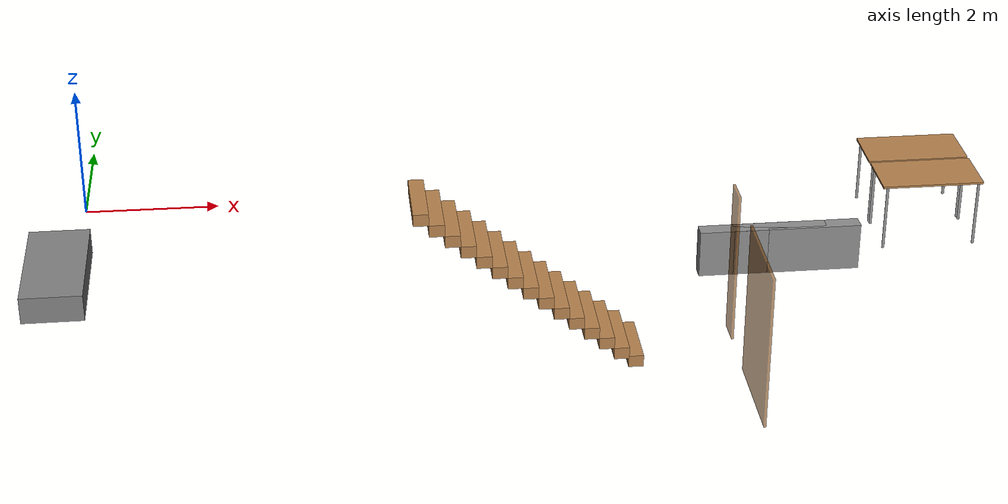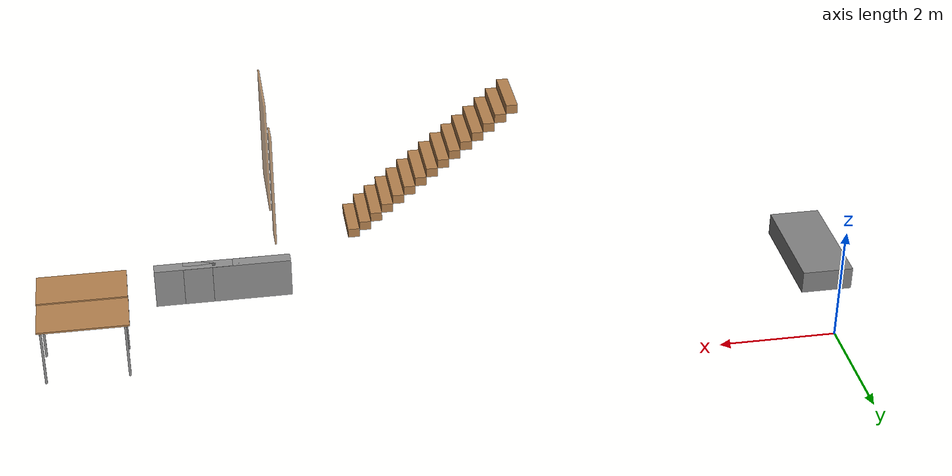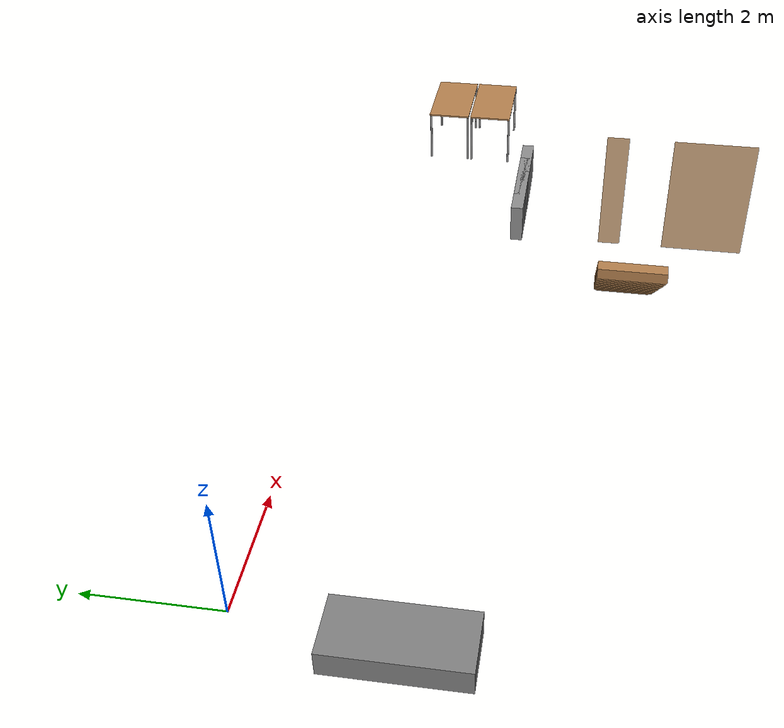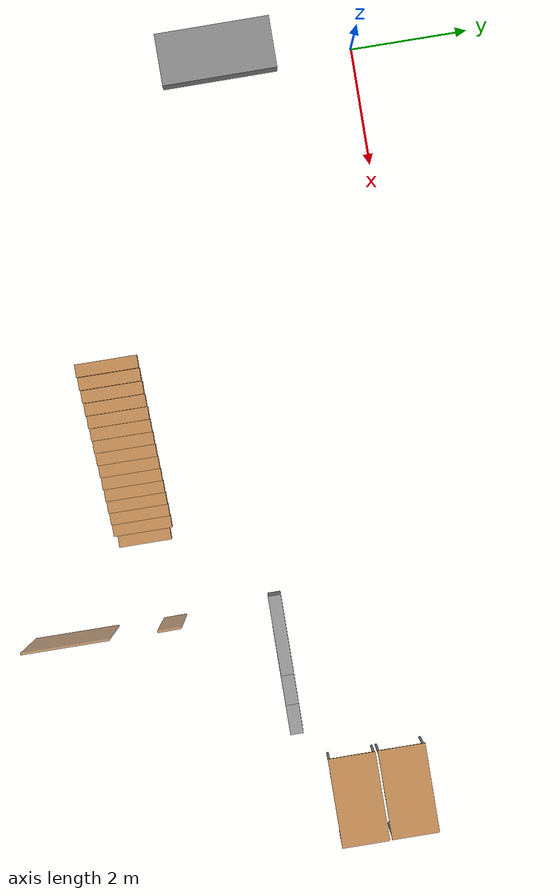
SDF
<sdf version="1.6">
 <world name="scenario_3">
  <physics name="1ms" type="ignored">
   <max_step_size>0.001</max_step_size>
   <real_time_factor>1.0</real_time_factor>
  </physics>
  <plugin filename="ignition-gazebo-contact-system" name="gz::sim::systems::Contact"/>
  <plugin filename="ignition-gazebo-imu-system" name="gz::sim::systems::Imu"/>
  <plugin filename="ignition-gazebo-physics-system" name="gz::sim::systems::Physics"/>
  <plugin filename="ignition-gazebo-scene-broadcaster-system" name="gz::sim::systems::SceneBroadcaster"/>
  <plugin filename="ignition-gazebo-sensors-system" name="gz::sim::systems::Sensors"/>
  <plugin filename="ignition-gazebo-user-commands-system" name="gz::sim::systems::UserCommands"/>
  <spherical_coordinates>
   <surface_model>EARTH_WGS84</surface_model>
   <world_frame_orientation>ENU</world_frame_orientation>
   <latitude_deg>50.088280</latitude_deg>
   <longitude_deg>19.938931</longitude_deg>
   <elevation>0</elevation>
   <heading_deg>0</heading_deg>
  </spherical_coordinates>
  <scene>
   <ambient>0.8 0.8 0.8 1</ambient>
   <background>0 0 0 1</background>
   <grid>0</grid>
   <shadows>1</shadows>
  </scene>
  <light name="sun" type="directional">
   <pose>0 0 10 0 -0 0</pose>
   <diffuse>0.8 0.8 0.8 1</diffuse>
   <specular>0.2 0.2 0.2 1</specular>
   <attenuation>
    <range>1000</range>
    <constant>0.9</constant>
    <linear>0.01</linear>
    <quadratic>0.001</quadratic>
   </attenuation>
   <direction>-0.5 0.1 -0.9</direction>
   <spot><inner_angle>0</inner_angle><outer_angle>0</outer_angle><falloff>0</falloff></spot>
  </light>
  <model name="OpenRobotics/Table">
   <static>1</static>
   <link name="link">
    <collision name="surface">
     <pose>0 0 1 0 -0 0</pose>
     <geometry><box><size>1.5 0.8 0.03</size></box></geometry>
     <surface><friction><ode><mu>0.6</mu><mu2>0.6</mu2></ode></friction></surface>
    </collision>
    <visual name="visual1">
     <pose>0 0 1 0 -0 0</pose>
     <geometry><box><size>1.5 0.8 0.03</size></box></geometry>
     <material>
      <diffuse>1 1 1 1</diffuse>
      <script><uri>file://media/materials/scripts/gazebo.material</uri><name>Gazebo/Wood</name></script>
      <pbr>
       <metal>
        <albedo_map>https://fuel.gazebosim.org/1.0/openrobotics/models/table/3/files/Table_Diffuse.jpg</albedo_map>
       </metal>
      </pbr>
     </material>
    </visual>
    <collision name="front_left_leg">
     <pose>0.68 0.38 0.5 0 -0 0</pose>
     <geometry><cylinder><radius>0.02</radius><length>1</length></cylinder></geometry>
    </collision>
    <visual name="front_left_leg">
     <pose>0.68 0.38 0.5 0 -0 0</pose>
     <geometry><cylinder><radius>0.02</radius><length>1</length></cylinder></geometry>
     <material>
      <diffuse>0.5 0.5 0.5 1</diffuse>
      <script><uri>file://media/materials/scripts/gazebo.material</uri><name>Gazebo/Grey</name></script>
     </material>
    </visual>
    <collision name="front_right_leg">
     <pose>0.68 -0.38 0.5 0 -0 0</pose>
     <geometry><cylinder><radius>0.02</radius><length>1</length></cylinder></geometry>
    </collision>
    <visual name="front_right_leg">
     <pose>0.68 -0.38 0.5 0 -0 0</pose>
     <geometry><cylinder><radius>0.02</radius><length>1</length></cylinder></geometry>
     <material>
      <diffuse>0.5 0.5 0.5 1</diffuse>
      <script><uri>file://media/materials/scripts/gazebo.material</uri><name>Gazebo/Grey</name></script>
     </material>
    </visual>
    <collision name="back_right_leg">
     <pose>-0.68 -0.38 0.5 0 -0 0</pose>
     <geometry><cylinder><radius>0.02</radius><length>1</length></cylinder></geometry>
    </collision>
    <visual name="back_right_leg">
     <pose>-0.68 -0.38 0.5 0 -0 0</pose>
     <geometry><cylinder><radius>0.02</radius><length>1</length></cylinder></geometry>
     <material>
      <diffuse>0.5 0.5 0.5 1</diffuse>
      <script><uri>file://media/materials/scripts/gazebo.material</uri><name>Gazebo/Grey</name></script>
     </material>
    </visual>
    <collision name="back_left_leg">
     <pose>-0.68 0.38 0.5 0 -0 0</pose>
     <geometry><cylinder><radius>0.02</radius><length>1</length></cylinder></geometry>
    </collision>
    <visual name="back_left_leg">
     <pose>-0.68 0.38 0.5 0 -0 0</pose>
     <geometry><cylinder><radius>0.02</radius><length>1</length></cylinder></geometry>
     <material>
      <diffuse>0.5 0.5 0.5 1</diffuse>
      <script><uri>file://media/materials/scripts/gazebo.material</uri><name>Gazebo/Grey</name></script>
     </material>
    </visual>
   </link>
   <pose>12.483 -1.10033 0 0 0 -3.14</pose>
  </model>
  <model name="OpenRobotics/Table_2">
   <static>1</static>
   <link name="link">
    <collision name="surface">
     <pose>0 0 1 0 -0 0</pose>
     <geometry><box><size>1.5 0.8 0.03</size></box></geometry>
     <surface><friction><ode><mu>0.6</mu><mu2>0.6</mu2></ode></friction></surface>
    </collision>
    <visual name="visual1">
     <pose>0 0 1 0 -0 0</pose>
     <geometry><box><size>1.5 0.8 0.03</size></box></geometry>
     <material>
      <diffuse>1 1 1 1</diffuse>
      <script><uri>file://media/materials/scripts/gazebo.material</uri><name>Gazebo/Wood</name></script>
      <pbr>
       <metal>
        <albedo_map>https://fuel.gazebosim.org/1.0/openrobotics/models/table/3/files/Table_Diffuse.jpg</albedo_map>
       </metal>
      </pbr>
     </material>
    </visual>
    <collision name="front_left_leg">
     <pose>0.68 0.38 0.5 0 -0 0</pose>
     <geometry><cylinder><radius>0.02</radius><length>1</length></cylinder></geometry>
    </collision>
    <visual name="front_left_leg">
     <pose>0.68 0.38 0.5 0 -0 0</pose>
     <geometry><cylinder><radius>0.02</radius><length>1</length></cylinder></geometry>
     <material>
      <diffuse>0.5 0.5 0.5 1</diffuse>
      <script><uri>file://media/materials/scripts/gazebo.material</uri><name>Gazebo/Grey</name></script>
     </material>
    </visual>
    <collision name="front_right_leg">
     <pose>0.68 -0.38 0.5 0 -0 0</pose>
     <geometry><cylinder><radius>0.02</radius><length>1</length></cylinder></geometry>
    </collision>
    <visual name="front_right_leg">
     <pose>0.68 -0.38 0.5 0 -0 0</pose>
     <geometry><cylinder><radius>0.02</radius><length>1</length></cylinder></geometry>
     <material>
      <diffuse>0.5 0.5 0.5 1</diffuse>
      <script><uri>file://media/materials/scripts/gazebo.material</uri><name>Gazebo/Grey</name></script>
     </material>
    </visual>
    <collision name="back_right_leg">
     <pose>-0.68 -0.38 0.5 0 -0 0</pose>
     <geometry><cylinder><radius>0.02</radius><length>1</length></cylinder></geometry>
    </collision>
    <visual name="back_right_leg">
     <pose>-0.68 -0.38 0.5 0 -0 0</pose>
     <geometry><cylinder><radius>0.02</radius><length>1</length></cylinder></geometry>
     <material>
      <diffuse>0.5 0.5 0.5 1</diffuse>
      <script><uri>file://media/materials/scripts/gazebo.material</uri><name>Gazebo/Grey</name></script>
     </material>
    </visual>
    <collision name="back_left_leg">
     <pose>-0.68 0.38 0.5 0 -0 0</pose>
     <geometry><cylinder><radius>0.02</radius><length>1</length></cylinder></geometry>
    </collision>
    <visual name="back_left_leg">
     <pose>-0.68 0.38 0.5 0 -0 0</pose>
     <geometry><cylinder><radius>0.02</radius><length>1</length></cylinder></geometry>
     <material>
      <diffuse>0.5 0.5 0.5 1</diffuse>
      <script><uri>file://media/materials/scripts/gazebo.material</uri><name>Gazebo/Grey</name></script>
     </material>
    </visual>
   </link>
   <pose>12.4903 -1.93794 0 0 0 -3.139</pose>
  </model>
  <model name="Stairs">
   <pose>3.36692 -2.10944 0 0 -0 0</pose>
   <link name="Stairs_1">
    <visual name="Stairs_1_Visual_0">
     <pose>4.29715 -2.69448 0.083333 0 -0 -1.5708</pose>
     <geometry><box><size>0.9 0.205349 0.166667</size></box></geometry>
     <material>
      <script><uri>file://media/materials/scripts/gazebo.material</uri><name>Gazebo/Wood</name></script>
      <ambient>1 1 1 1</ambient>
     </material>
     <meta><layer>0</layer></meta>
    </visual>
    <collision name="Stairs_1_Collision_0">
     <geometry><box><size>1 0.205349 0.166667</size></box></geometry>
     <pose>4.29715 -2.69448 0.083333 0 -0 -1.5708</pose>
    </collision>
    <visual name="Stairs_1_Visual_1">
     <pose>4.0918 -2.69448 0.25 0 -0 -1.5708</pose>
     <geometry><box><size>1 0.205349 0.166667</size></box></geometry>
     <material>
      <script><uri>file://media/materials/scripts/gazebo.material</uri><name>Gazebo/Wood</name></script>
      <ambient>1 1 1 1</ambient>
     </material>
     <meta><layer>0</layer></meta>
    </visual>
    <collision name="Stairs_1_Collision_1">
     <geometry><box><size>1 0.205349 0.166667</size></box></geometry>
     <pose>4.0918 -2.69448 0.25 0 -0 -1.5708</pose>
    </collision>
    <visual name="Stairs_1_Visual_2">
     <pose>3.88645 -2.69448 0.416667 0 -0 -1.5708</pose>
     <geometry><box><size>1 0.205349 0.166667</size></box></geometry>
     <material>
      <script><uri>file://media/materials/scripts/gazebo.material</uri><name>Gazebo/Wood</name></script>
      <ambient>1 1 1 1</ambient>
     </material>
     <meta><layer>0</layer></meta>
    </visual>
    <collision name="Stairs_1_Collision_2">
     <geometry><box><size>1 0.205349 0.166667</size></box></geometry>
     <pose>3.88645 -2.69448 0.416667 0 -0 -1.5708</pose>
    </collision>
    <visual name="Stairs_1_Visual_3">
     <pose>3.6811 -2.69448 0.583333 0 -0 -1.5708</pose>
     <geometry><box><size>1 0.205349 0.166667</size></box></geometry>
     <material>
      <script><uri>file://media/materials/scripts/gazebo.material</uri><name>Gazebo/Wood</name></script>
      <ambient>1 1 1 1</ambient>
     </material>
     <meta><layer>0</layer></meta>
    </visual>
    <collision name="Stairs_1_Collision_3">
     <geometry><box><size>1 0.205349 0.166667</size></box></geometry>
     <pose>3.6811 -2.69448 0.583333 0 -0 -1.5708</pose>
    </collision>
    <visual name="Stairs_1_Visual_4">
     <pose>3.47575 -2.69448 0.75 0 -0 -1.5708</pose>
     <geometry><box><size>1 0.205349 0.166667</size></box></geometry>
     <material>
      <script><uri>file://media/materials/scripts/gazebo.material</uri><name>Gazebo/Wood</name></script>
      <ambient>1 1 1 1</ambient>
     </material>
     <meta><layer>0</layer></meta>
    </visual>
    <collision name="Stairs_1_Collision_4">
     <geometry><box><size>1 0.205349 0.166667</size></box></geometry>
     <pose>3.47575 -2.69448 0.75 0 -0 -1.5708</pose>
    </collision>
    <visual name="Stairs_1_Visual_5">
     <pose>3.2704 -2.69448 0.916667 0 -0 -1.5708</pose>
     <geometry><box><size>1 0.205349 0.166667</size></box></geometry>
     <material>
      <script><uri>file://media/materials/scripts/gazebo.material</uri><name>Gazebo/Wood</name></script>
      <ambient>1 1 1 1</ambient>
     </material>
     <meta><layer>0</layer></meta>
    </visual>
    <collision name="Stairs_1_Collision_5">
     <geometry><box><size>1 0.205349 0.166667</size></box></geometry>
     <pose>3.2704 -2.69448 0.916667 0 -0 -1.5708</pose>
    </collision>
    <visual name="Stairs_1_Visual_6">
     <pose>3.06505 -2.69448 1.08333 0 -0 -1.5708</pose>
     <geometry><box><size>1 0.205349 0.166667</size></box></geometry>
     <material>
      <script><uri>file://media/materials/scripts/gazebo.material</uri><name>Gazebo/Wood</name></script>
      <ambient>1 1 1 1</ambient>
     </material>
     <meta><layer>0</layer></meta>
    </visual>
    <collision name="Stairs_1_Collision_6">
     <geometry><box><size>1 0.205349 0.166667</size></box></geometry>
     <pose>3.06505 -2.69448 1.08333 0 -0 -1.5708</pose>
    </collision>
    <visual name="Stairs_1_Visual_7">
     <pose>2.8597 -2.69448 1.25 0 -0 -1.5708</pose>
     <geometry><box><size>1 0.205349 0.166667</size></box></geometry>
     <material>
      <script><uri>file://media/materials/scripts/gazebo.material</uri><name>Gazebo/Wood</name></script>
      <ambient>1 1 1 1</ambient>
     </material>
     <meta><layer>0</layer></meta>
    </visual>
    <collision name="Stairs_1_Collision_7">
     <geometry><box><size>1 0.205349 0.166667</size></box></geometry>
     <pose>2.8597 -2.69448 1.25 0 -0 -1.5708</pose>
    </collision>
    <visual name="Stairs_1_Visual_8">
     <pose>2.65435 -2.69448 1.41667 0 -0 -1.5708</pose>
     <geometry><box><size>1 0.205349 0.166667</size></box></geometry>
     <material>
      <script><uri>file://media/materials/scripts/gazebo.material</uri><name>Gazebo/Wood</name></script>
      <ambient>1 1 1 1</ambient>
     </material>
     <meta><layer>0</layer></meta>
    </visual>
    <collision name="Stairs_1_Collision_8">
     <geometry><box><size>1 0.205349 0.166667</size></box></geometry>
     <pose>2.65435 -2.69448 1.41667 0 -0 -1.5708</pose>
    </collision>
    <visual name="Stairs_1_Visual_9">
     <pose>2.449 -2.69448 1.58333 0 -0 -1.5708</pose>
     <geometry><box><size>1 0.205349 0.166667</size></box></geometry>
     <material>
      <script><uri>file://media/materials/scripts/gazebo.material</uri><name>Gazebo/Wood</name></script>
      <ambient>1 1 1 1</ambient>
     </material>
     <meta><layer>0</layer></meta>
    </visual>
    <collision name="Stairs_1_Collision_9">
     <geometry><box><size>1 0.205349 0.166667</size></box></geometry>
     <pose>2.449 -2.69448 1.58333 0 -0 -1.5708</pose>
    </collision>
    <visual name="Stairs_1_Visual_10">
     <pose>2.24365 -2.69448 1.75 0 -0 -1.5708</pose>
     <geometry><box><size>1 0.205349 0.166667</size></box></geometry>
     <material>
      <script><uri>file://media/materials/scripts/gazebo.material</uri><name>Gazebo/Wood</name></script>
      <ambient>1 1 1 1</ambient>
     </material>
     <meta><layer>0</layer></meta>
    </visual>
    <collision name="Stairs_1_Collision_10">
     <geometry><box><size>1 0.205349 0.166667</size></box></geometry>
     <pose>2.24365 -2.69448 1.75 0 -0 -1.5708</pose>
    </collision>
    <visual name="Stairs_1_Visual_11">
     <pose>2.0383 -2.69448 1.91667 0 -0 -1.5708</pose>
     <geometry><box><size>1 0.205349 0.166667</size></box></geometry>
     <material>
      <script><uri>file://media/materials/scripts/gazebo.material</uri><name>Gazebo/Wood</name></script>
      <ambient>1 1 1 1</ambient>
     </material>
     <meta><layer>0</layer></meta>
    </visual>
    <collision name="Stairs_1_Collision_11">
     <geometry><box><size>1 0.205349 0.166667</size></box></geometry>
     <pose>2.0383 -2.69448 1.91667 0 -0 -1.5708</pose>
    </collision>
    <visual name="Stairs_1_Visual_12">
     <pose>1.83295 -2.69448 2.08333 0 -0 -1.5708</pose>
     <geometry><box><size>1 0.205349 0.166667</size></box></geometry>
     <material>
      <script><uri>file://media/materials/scripts/gazebo.material</uri><name>Gazebo/Wood</name></script>
      <ambient>1 1 1 1</ambient>
     </material>
     <meta><layer>0</layer></meta>
    </visual>
    <collision name="Stairs_1_Collision_12">
     <geometry><box><size>1 0.205349 0.166667</size></box></geometry>
     <pose>1.83295 -2.69448 2.08333 0 -0 -1.5708</pose>
    </collision>
    <visual name="Stairs_1_Visual_13">
     <pose>1.62761 -2.69448 2.25 0 -0 -1.5708</pose>
     <geometry><box><size>1 0.205349 0.166667</size></box></geometry>
     <material>
      <script><uri>file://media/materials/scripts/gazebo.material</uri><name>Gazebo/Wood</name></script>
      <ambient>1 1 1 1</ambient>
     </material>
     <meta><layer>0</layer></meta>
    </visual>
    <collision name="Stairs_1_Collision_13">
     <geometry><box><size>1 0.205349 0.166667</size></box></geometry>
     <pose>1.62761 -2.69448 2.25 0 -0 -1.5708</pose>
    </collision>
    <visual name="Stairs_1_Visual_14">
     <pose>1.42226 -2.69448 2.41667 0 -0 -1.5708</pose>
     <geometry><box><size>1 0.205349 0.166667</size></box></geometry>
     <material>
      <script><uri>file://media/materials/scripts/gazebo.material</uri><name>Gazebo/Wood</name></script>
      <ambient>1 1 1 1</ambient>
     </material>
     <meta><layer>0</layer></meta>
    </visual>
    <collision name="Stairs_1_Collision_14">
     <geometry><box><size>1 0.205349 0.166667</size></box></geometry>
     <pose>1.42226 -2.69448 2.41667 0 -0 -1.5708</pose>
    </collision>
   </link>
   <static>1</static>
  </model>
  <model name="Glass_wall_1">
   <pose>9.09134 -6.20141 0 -0 -0 -1.56984</pose>
   <link name="right">
    <pose>0 0 1.11 0 -0 0</pose>
    <visual name="right_visual">
     <geometry><box><size>1.43627 0.03 2.2</size></box></geometry>
     <material><ambient>0.5 0.25 0 0.6</ambient><diffuse>0.5 0.25 0 0.6</diffuse></material>
    </visual>
    <collision name="right_collision">
     <geometry><box><size>1.43627 0.03 2.2</size></box></geometry>
     <surface><contact><collide_bitmask>2</collide_bitmask></contact></surface>
    </collision>
    <inertial>
     <mass>50</mass>
     <inertia><ixx>20.1704</ixx><iyy>28.762</iyy><izz>8.59904</izz><ixy>0</ixy><ixz>0</ixz><iyz>0</iyz></inertia>
    </inertial>
   </link>
   <joint name="right_joint" type="revolute">
    <parent>world</parent>
    <child>right</child>
    <axis>
     <xyz>0 0 -1</xyz>
     <limit><lower>0</lower><upper>0</upper></limit>
     <dynamics><spring_reference>0</spring_reference><spring_stiffness>0</spring_stiffness></dynamics>
    </axis>
    <pose>0.723135 0 0 0 -0 0</pose>
   </joint>
  </model>
  <model name="Glass_wall_2">
   <pose>9.08943 -4.5093 0 0 -0 1.58293</pose>
   <link name="right">
    <pose>0 0 1.11 0 -0 0</pose>
    <visual name="right_visual">
     <geometry><box><size>0.389643 0.03 2.2</size></box></geometry>
     <material><ambient>0.5 0.25 0 0.6</ambient><diffuse>0.5 0.25 0 0.6</diffuse></material>
    </visual>
    <collision name="right_collision">
     <geometry><box><size>0.389643 0.03 2.2</size></box></geometry>
     <surface><contact><collide_bitmask>2</collide_bitmask></contact></surface>
    </collision>
    <inertial>
     <mass>50</mass>
     <inertia><ixx>20.1704</ixx><iyy>20.7993</iyy><izz>0.636341</izz><ixy>0</ixy><ixz>0</ixz><iyz>0</iyz></inertia>
    </inertial>
   </link>
   <joint name="right_joint" type="revolute">
    <parent>world</parent>
    <child>right</child>
    <axis>
     <xyz>0 0 -1</xyz>
     <limit><lower>0</lower><upper>0</upper></limit>
     <dynamics><spring_reference>0</spring_reference><spring_stiffness>0</spring_stiffness></dynamics>
    </axis>
    <pose>0.199822 0 0 0 -0 0</pose>
   </joint>
  </model>
  <model name="Shelf_1">
   <static>1</static>
   <pose>-0.273934 -2.28745 0.2 0 0 -1.56696</pose>
   <link name="shelf_link">
    <collision name="body_collision"><geometry><box><size>1.9638 0.8878 0.4</size></box></geometry></collision>
    <visual name="body_visual">
     <material>
      <ambient>0.4 0.4 0.4 1</ambient>
      <diffuse>0.5 0.5 0.5 1</diffuse>
      <specular>0 0 0 0</specular>
      <emissive>0 0 0 1</emissive>
     </material>
     <geometry><box><size>1.9638 0.8878 0.4</size></box></geometry>
    </visual>
   </link>
  </model>
  <gravity>0 0 -9.8</gravity>
  <magnetic_field>6e-06 2.3e-05 -4.2e-05</magnetic_field>
  <atmosphere type="adiabatic"/>
  <physics type="ode">
   <max_step_size>0.001</max_step_size>
   <real_time_factor>1</real_time_factor>
   <real_time_update_rate>1000</real_time_update_rate>
  </physics>
  <spherical_coordinates>
   <surface_model>EARTH_WGS84</surface_model>
   <latitude_deg>0</latitude_deg>
   <longitude_deg>0</longitude_deg>
   <elevation>0</elevation>
   <heading_deg>0</heading_deg>
  </spherical_coordinates>
  <plugin filename="libhostage_actor_controller.so" name="hostage_sim::HostageActorController">
   <actor_name>hostage_1</actor_name>
   <cmd_vel_topic>/hostage_1/cmd_vel</cmd_vel_topic>
   <pose_topic>/hostage_1/pose</pose_topic>
   <max_linear_speed>0.8</max_linear_speed>
   <max_angular_speed>1.6</max_angular_speed>
   <animation_factor>1.0</animation_factor>
   <command_timeout>0.5</command_timeout>
  </plugin>
  <model name="Scenario3_Blocker_A">
   <static>true</static>
   <pose>9.62 -2.78 0.35 0 0 1.575</pose>
   <link name="link">
    <collision name="collision"><geometry><box><size>0.22 1.35 0.70</size></box></geometry></collision>
    <visual name="visual">
     <geometry><box><size>0.22 1.35 0.70</size></box></geometry>
     <material>
      <ambient>0.45 0.45 0.45 1</ambient>
      <diffuse>0.55 0.55 0.55 1</diffuse>
      <specular>0.05 0.05 0.05 1</specular>
     </material>
    </visual>
   </link>
  </model>
  <model name="Scenario3_Blocker_B">
   <static>true</static>
   <pose>10.12 -2.78 0.35 0 0 1.575</pose>
   <link name="link">
    <collision name="collision"><geometry><box><size>0.22 1.35 0.70</size></box></geometry></collision>
    <visual name="visual">
     <geometry><box><size>0.22 1.35 0.70</size></box></geometry>
     <material>
      <ambient>0.45 0.45 0.45 1</ambient>
      <diffuse>0.55 0.55 0.55 1</diffuse>
      <specular>0.05 0.05 0.05 1</specular>
     </material>
    </visual>
   </link>
  </model>
  <model name="Scenario3_Blocker_C">
   <static>true</static>
   <pose>10.62 -2.78 0.35 0 0 1.575</pose>
   <link name="link">
    <collision name="collision"><geometry><box><size>0.22 1.35 0.70</size></box></geometry></collision>
    <visual name="visual">
     <geometry><box><size>0.22 1.35 0.70</size></box></geometry>
     <material>
      <ambient>0.45 0.45 0.45 1</ambient>
      <diffuse>0.55 0.55 0.55 1</diffuse>
      <specular>0.05 0.05 0.05 1</specular>
     </material>
    </visual>
   </link>
  </model>
 </world>
</sdf>
